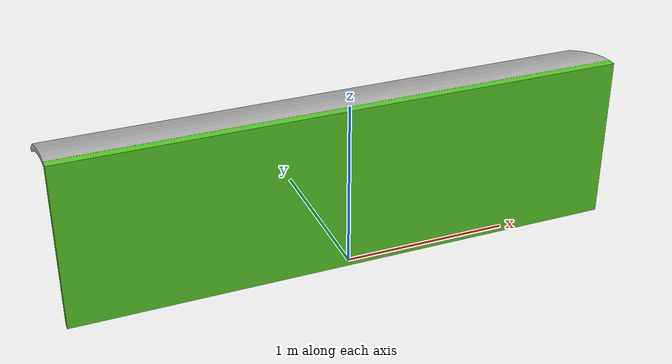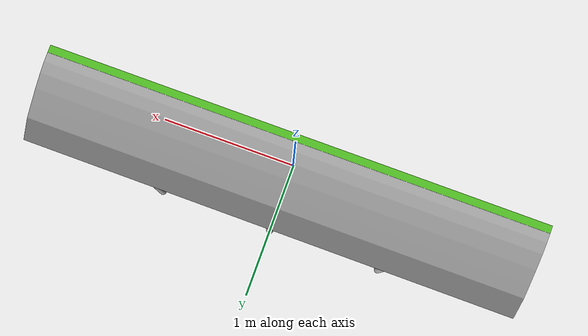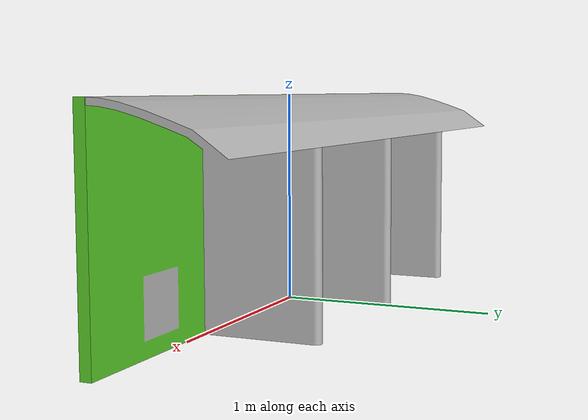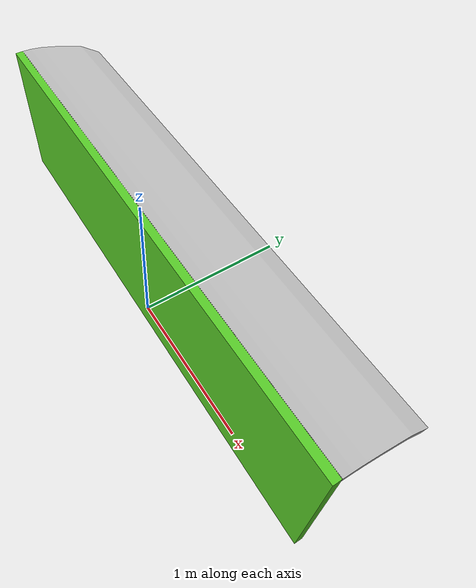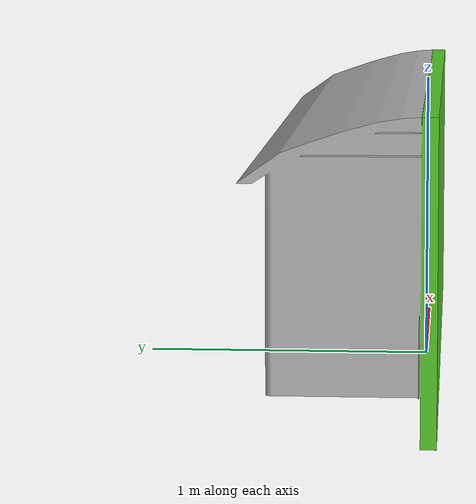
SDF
<?xml version="1.0" ?>
<sdf version="1.5">
<model name="dock">
  <static>true</static>
  <link name="dock_link">

  <visual name="dock">
    <pose>0 0 0 0 0 0</pose>
    <geometry>
      <mesh><uri>model://tag1/meshes/wholeparkingblock.dae</uri><scale>1 1 1</scale></mesh>
    </geometry>
  </visual>

  <collision name="dock">
    <pose>0 0 0 0 0 0</pose>
    <geometry>
      <mesh><uri>model://tag1/meshes/wholeparkingblock.dae</uri><scale>1 1 1</scale></mesh>
    </geometry>
  </collision>

  </link>
</model>
</sdf>
